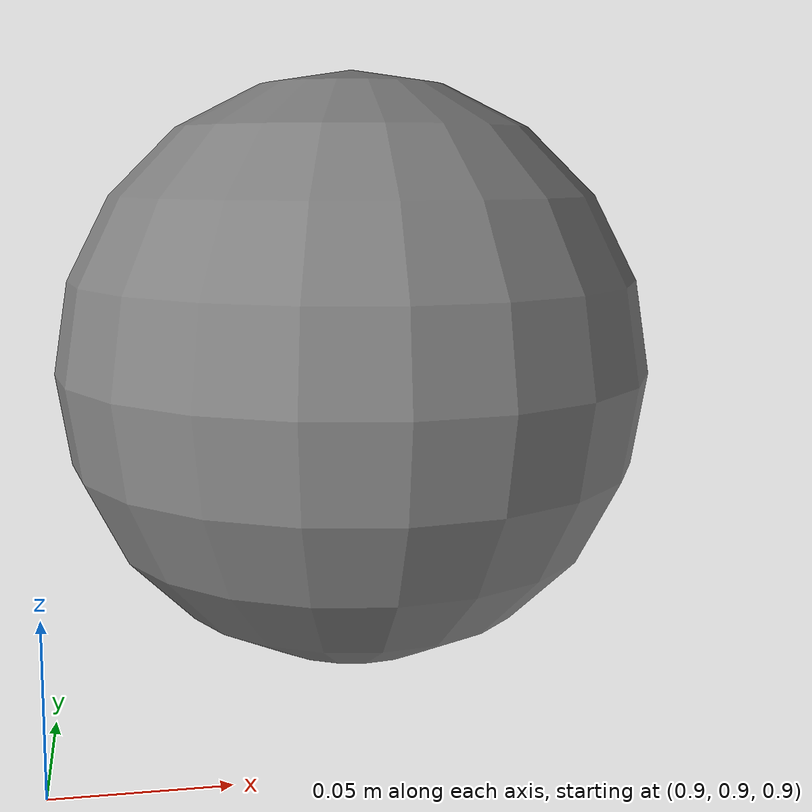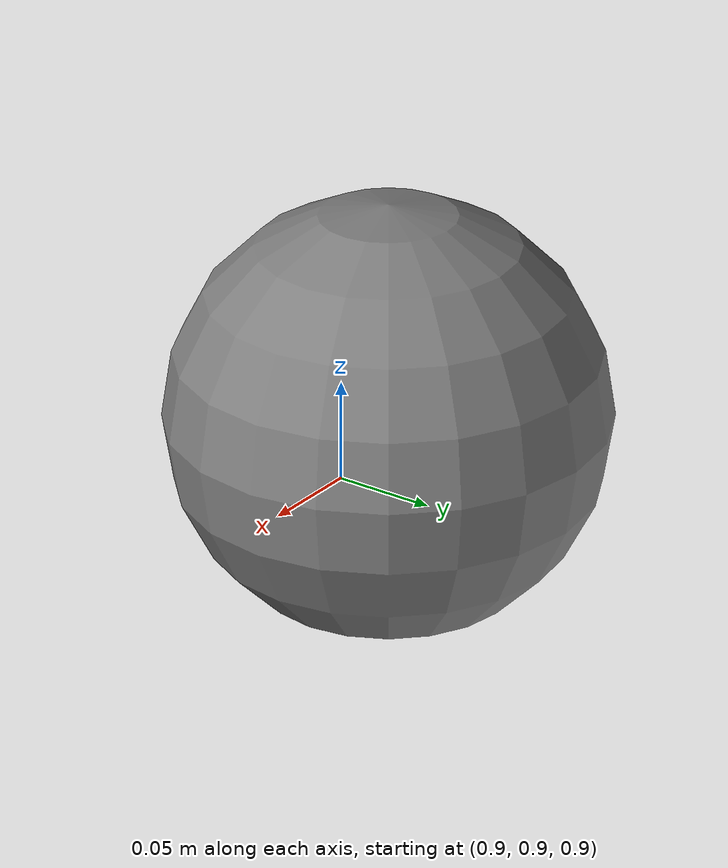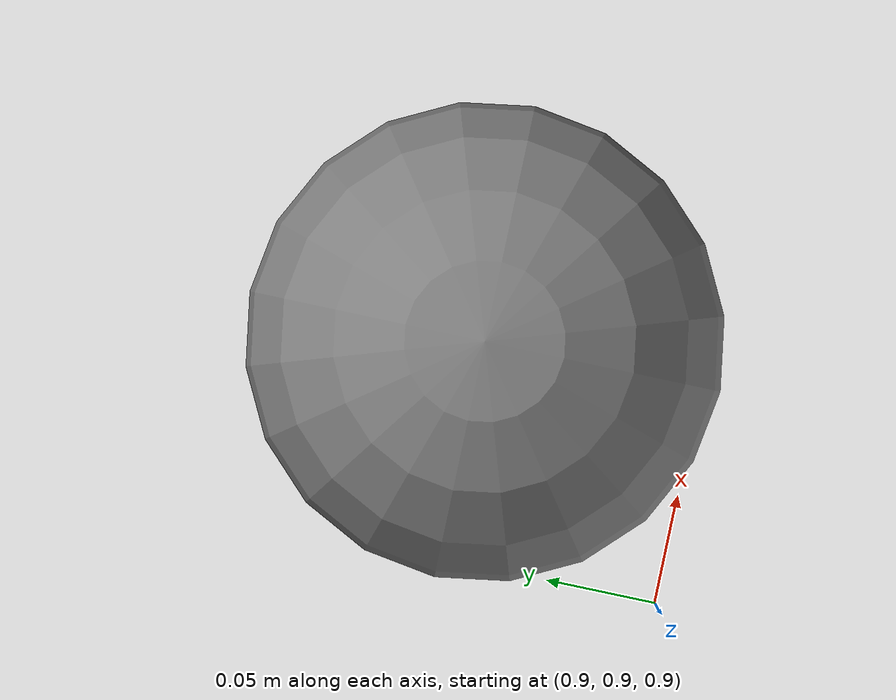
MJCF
<mujoco>
                <worldbody>
                    <body name="b">
                        <frame pos="1 0 0">
                            <frame pos="0 1 0">
                                <frame pos="0 0 1">
                                    <geom name="fg" type="sphere" size="0.1"/>
                                </frame>
                            </frame>
                        </frame>
                    </body>
                </worldbody>
            </mujoco>
